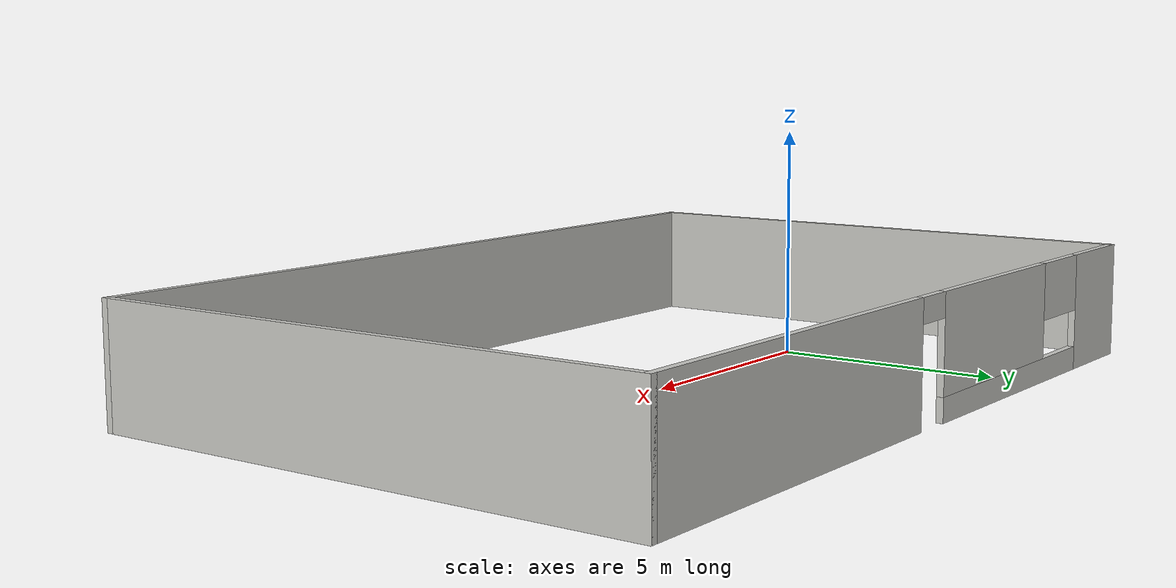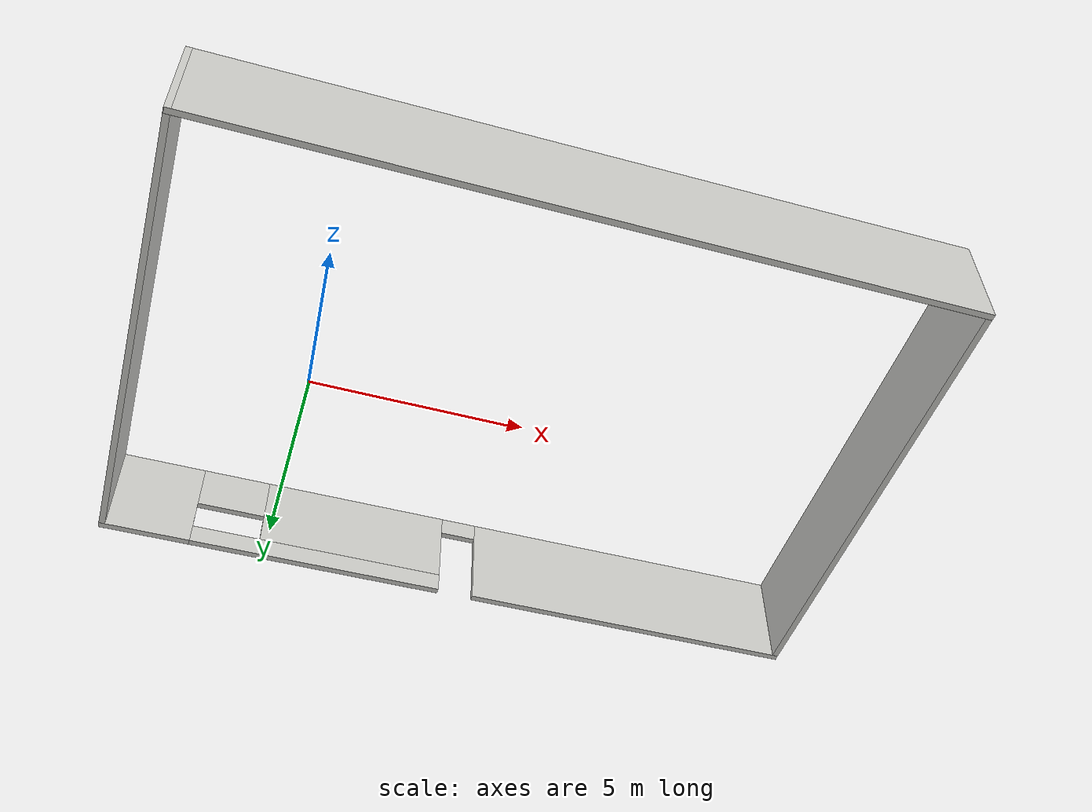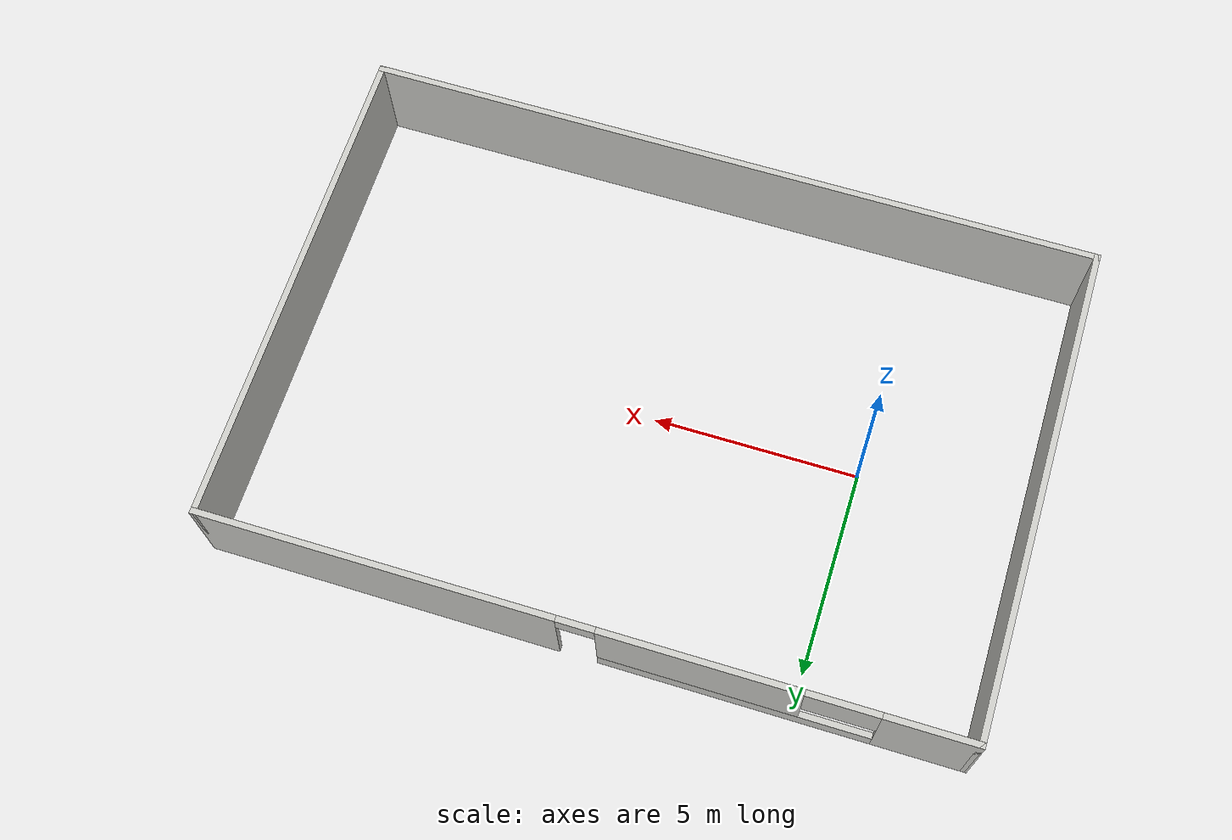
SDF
<?xml version='1.0'?>
<sdf version='1.6'>
  <model name='test_room'>
    <pose frame=''>4.925 0 0 0 -0 0</pose>
    <link name='Wall_10'>
      <collision name='Wall_10_Collision'>
        <geometry>
          <box>
            <size>12.15 0.15 2.5</size>
          </box>
        </geometry>
        <pose frame=''>0 0 1.25 0 -0 0</pose>
      </collision>
      <visual name='Wall_10_Visual'>
        <pose frame=''>0 0 1.25 0 -0 0</pose>
        <geometry>
          <box>
            <size>12.15 0.15 2.5</size>
          </box>
        </geometry>
        <material>
          <script>
            <uri>file://media/materials/scripts/gazebo.material</uri>
            <name>Gazebo/CeilingTiled</name>
          </script>
          <ambient>0.921569 0.807843 0.615686 1</ambient>
        </material>
      </visual>
      <pose frame=''>-8.925 0 0 0 -0 1.5708</pose>
    </link>
    <link name='Wall_7'>
      <pose frame=''>0 6 0 0 -0 0</pose>
      <visual name='Wall_7_Visual_0'>
        <pose frame=''>-7.8875 0 1.25 0 -0 0</pose>
        <geometry>
          <box>
            <size>2.225 0.15 2.5</size>
          </box>
        </geometry>
        <material>
          <script>
            <uri>file://media/materials/scripts/gazebo.material</uri>
            <name>Gazebo/CeilingTiled</name>
          </script>
          <ambient>0.921569 0.807843 0.615686 1</ambient>
        </material>
      </visual>
      <collision name='Wall_7_Collision_0'>
        <geometry>
          <box>
            <size>2.225 0.15 2.5</size>
          </box>
        </geometry>
        <pose frame=''>-7.8875 0 1.25 0 -0 0</pose>
      </collision>
      <visual name='Wall_7_Visual_1'>
        <pose frame=''>4.75265 0 1.25 0 -0 0</pose>
        <geometry>
          <box>
            <size>8.49469 0.15 2.5</size>
          </box>
        </geometry>
        <material>
          <script>
            <uri>file://media/materials/scripts/gazebo.material</uri>
            <name>Gazebo/CeilingTiled</name>
          </script>
          <ambient>0.921569 0.807843 0.615686 1</ambient>
        </material>
      </visual>
      <collision name='Wall_7_Collision_1'>
        <geometry>
          <box>
            <size>8.49469 0.15 2.5</size>
          </box>
        </geometry>
        <pose frame=''>4.75265 0 1.25 0 -0 0</pose>
      </collision>
      <visual name='Wall_7_Visual_2'>
        <pose frame=''>-3.58485 0 0.25 0 -0 0</pose>
        <geometry>
          <box>
            <size>6.38031 0.15 0.5</size>
          </box>
        </geometry>
        <material>
          <script>
            <uri>file://media/materials/scripts/gazebo.material</uri>
            <name>Gazebo/CeilingTiled</name>
          </script>
          <ambient>0.921569 0.807843 0.615686 1</ambient>
        </material>
      </visual>
      <collision name='Wall_7_Collision_2'>
        <geometry>
          <box>
            <size>6.38031 0.15 0.5</size>
          </box>
        </geometry>
        <pose frame=''>-3.58485 0 0.25 0 -0 0</pose>
      </collision>
      <visual name='Wall_7_Visual_3'>
        <pose frame=''>-2.73485 0 1.5 0 -0 0</pose>
        <geometry>
          <box>
            <size>4.68031 0.15 2</size>
          </box>
        </geometry>
        <material>
          <script>
            <uri>file://media/materials/scripts/gazebo.material</uri>
            <name>Gazebo/CeilingTiled</name>
          </script>
          <ambient>0.921569 0.807843 0.615686 1</ambient>
        </material>
      </visual>
      <collision name='Wall_7_Collision_3'>
        <geometry>
          <box>
            <size>4.68031 0.15 2</size>
          </box>
        </geometry>
        <pose frame=''>-2.73485 0 1.5 0 -0 0</pose>
      </collision>
      <visual name='Wall_7_Visual_4'>
        <pose frame=''>-5.925 0 1.9 0 -0 0</pose>
        <geometry>
          <box>
            <size>1.7 0.15 1.2</size>
          </box>
        </geometry>
        <material>
          <script>
            <uri>file://media/materials/scripts/gazebo.material</uri>
            <name>Gazebo/CeilingTiled</name>
          </script>
          <ambient>0.921569 0.807843 0.615686 1</ambient>
        </material>
      </visual>
      <collision name='Wall_7_Collision_4'>
        <geometry>
          <box>
            <size>1.7 0.15 1.2</size>
          </box>
        </geometry>
        <pose frame=''>-5.925 0 1.9 0 -0 0</pose>
      </collision>
      <visual name='Wall_7_Visual_5'>
        <pose frame=''>0.055306 0 2.25 0 -0 0</pose>
        <geometry>
          <box>
            <size>0.9 0.15 0.5</size>
          </box>
        </geometry>
        <material>
          <script>
            <uri>file://media/materials/scripts/gazebo.material</uri>
            <name>Gazebo/CeilingTiled</name>
          </script>
          <ambient>0.921569 0.807843 0.615686 1</ambient>
        </material>
      </visual>
      <collision name='Wall_7_Collision_5'>
        <geometry>
          <box>
            <size>0.9 0.15 0.5</size>
          </box>
        </geometry>
        <pose frame=''>0.055306 0 2.25 0 -0 0</pose>
      </collision>
    </link>
    <link name='Wall_8'>
      <collision name='Wall_8_Collision'>
        <geometry>
          <box>
            <size>12.15 0.15 2.5</size>
          </box>
        </geometry>
        <pose frame=''>0 0 1.25 0 -0 0</pose>
      </collision>
      <visual name='Wall_8_Visual'>
        <pose frame=''>0 0 1.25 0 -0 0</pose>
        <geometry>
          <box>
            <size>12.15 0.15 2.5</size>
          </box>
        </geometry>
        <material>
          <script>
            <uri>file://media/materials/scripts/gazebo.material</uri>
            <name>Gazebo/CeilingTiled</name>
          </script>
          <ambient>0.921569 0.807843 0.615686 1</ambient>
        </material>
      </visual>
      <pose frame=''>8.925 0 0 0 0 -1.5708</pose>
    </link>
    <link name='Wall_9'>
      <collision name='Wall_9_Collision'>
        <geometry>
          <box>
            <size>18 0.15 2.5</size>
          </box>
        </geometry>
        <pose frame=''>0 0 1.25 0 -0 0</pose>
      </collision>
      <visual name='Wall_9_Visual'>
        <pose frame=''>0 0 1.25 0 -0 0</pose>
        <geometry>
          <box>
            <size>18 0.15 2.5</size>
          </box>
        </geometry>
        <material>
          <script>
            <uri>file://media/materials/scripts/gazebo.material</uri>
            <name>Gazebo/CeilingTiled</name>
          </script>
          <ambient>0.921569 0.807843 0.615686 1</ambient>
        </material>
      </visual>
      <pose frame=''>0 -6 0 0 -0 3.14159</pose>
    </link>
    <static>1</static>
  </model>
</sdf>
